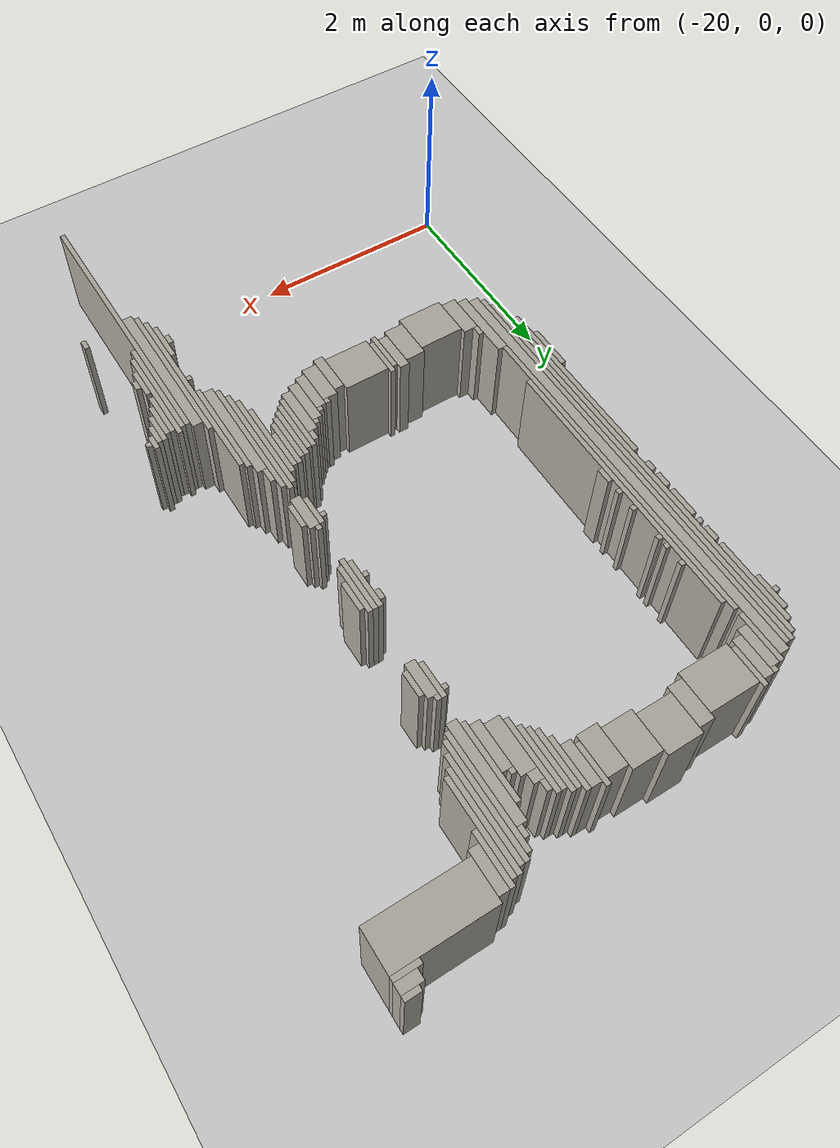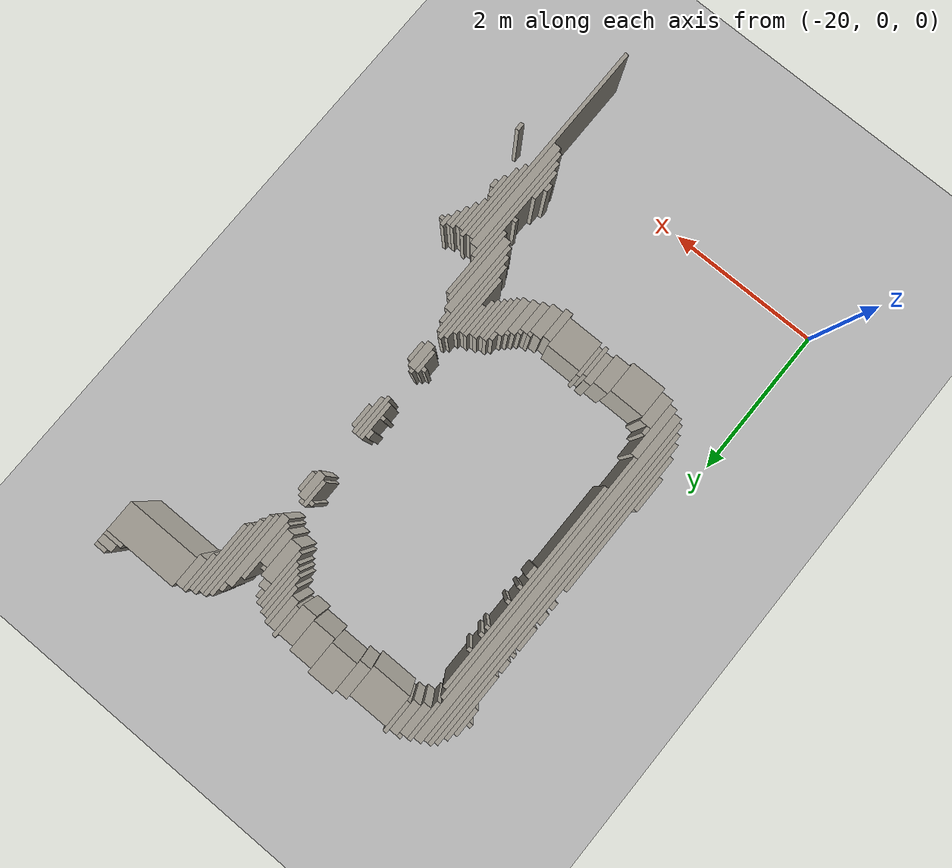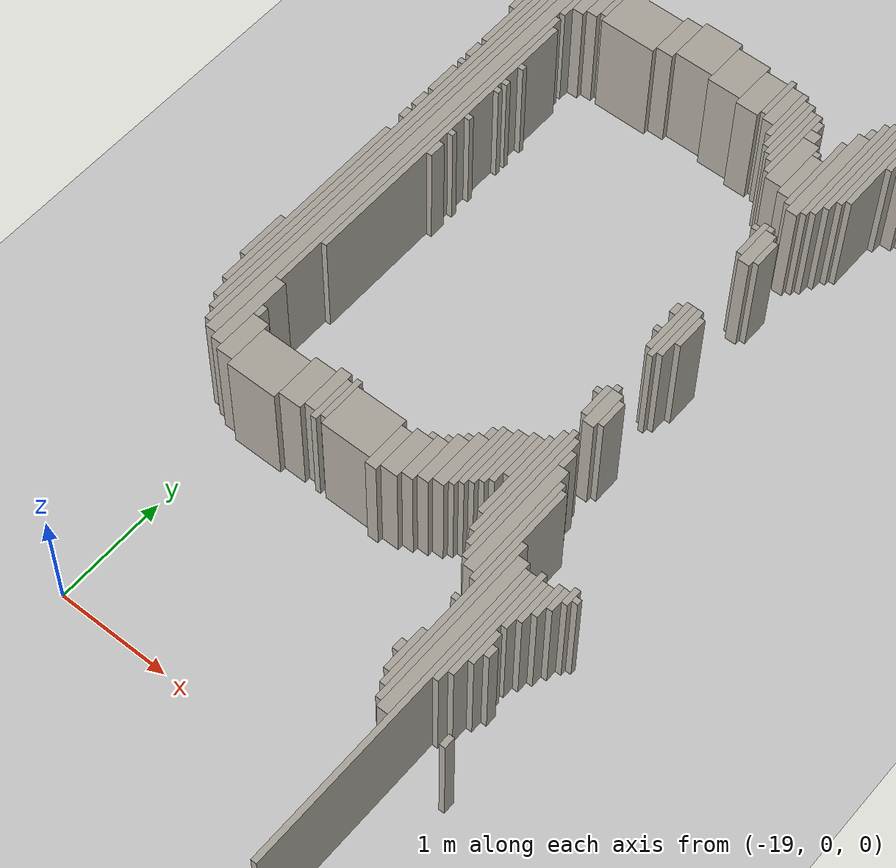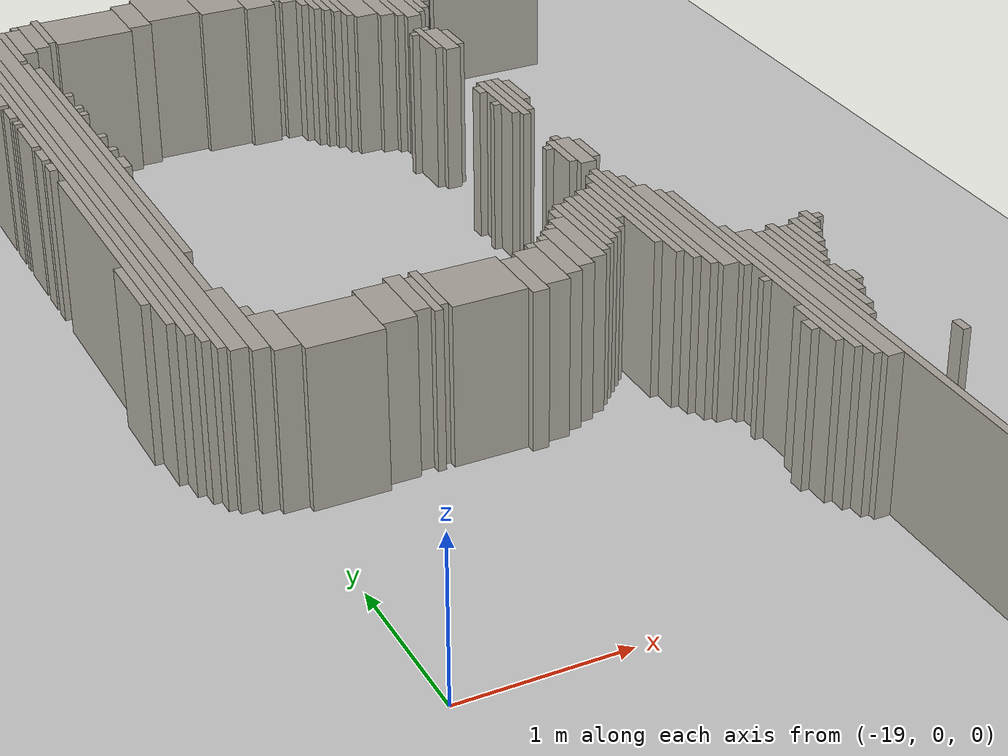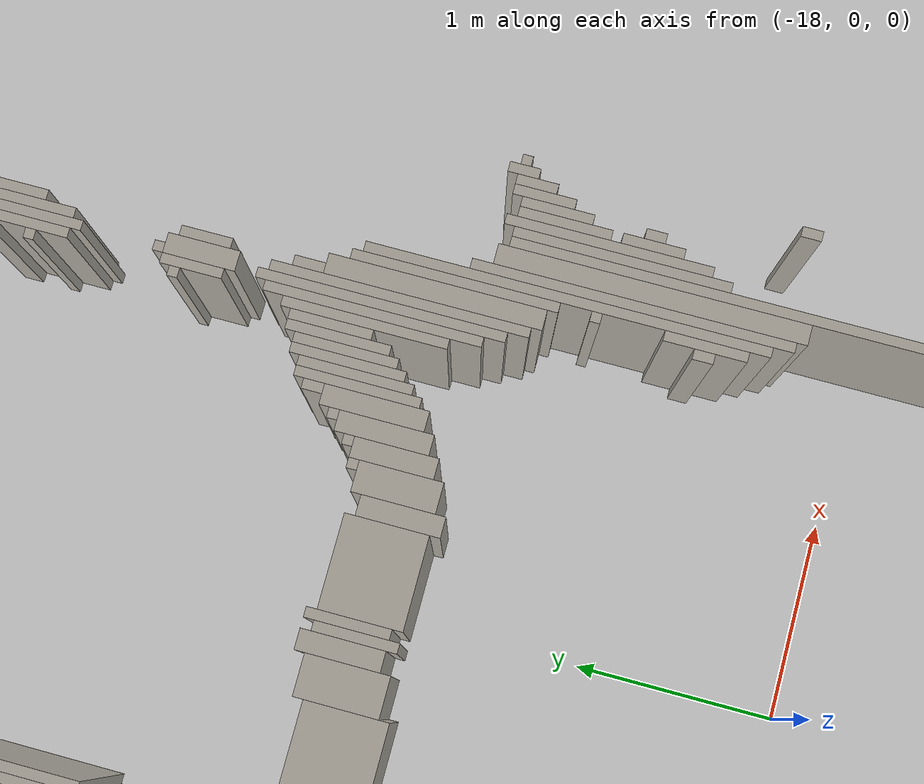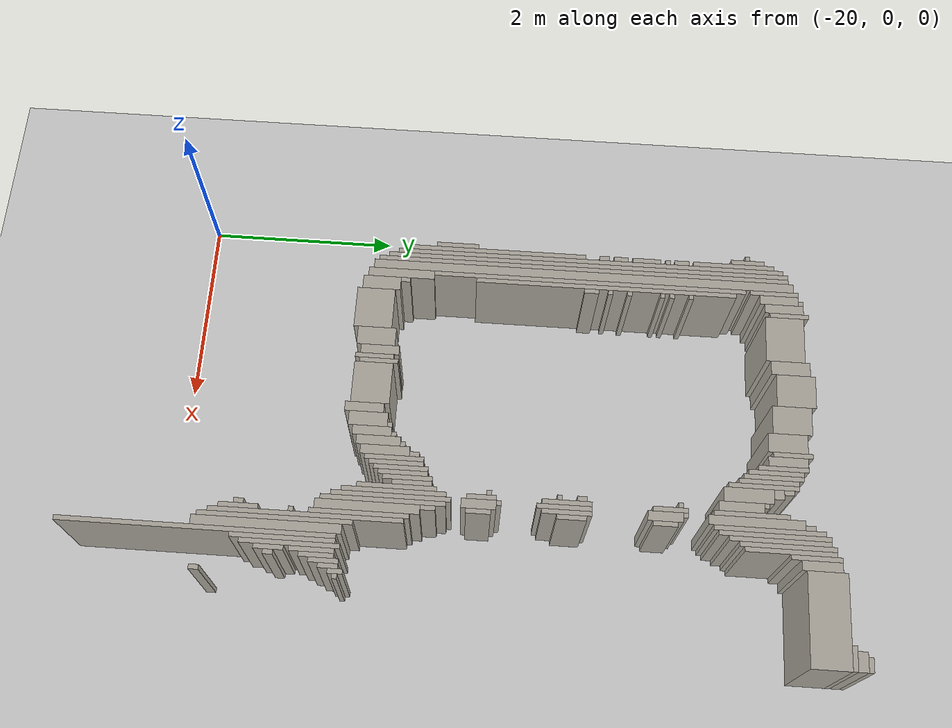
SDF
<sdf version="1.6">
 <world name="fr079_office">
  <include><uri>model://sun</uri></include>
  <include><uri>model://ground_plane</uri></include>
  <model name="fr079_office_walls">
   <static>true</static>
   <link name="w1769">
    <pose>-16.223 0.444 0.500 0 0 0</pose>
    <collision name="c"><geometry><box><size>0.050 2.800 1.000</size></box></geometry></collision>
    <visual name="v">
     <geometry><box><size>0.050 2.800 1.000</size></box></geometry>
     <material><ambient>0.68 0.66 0.62 1</ambient><diffuse>0.68 0.66 0.62 1</diffuse></material>
    </visual>
   </link>
   <link name="w1800">
    <pose>-16.298 1.144 0.500 0 0 0</pose>
    <collision name="c"><geometry><box><size>0.100 1.500 1.000</size></box></geometry></collision>
    <visual name="v">
     <geometry><box><size>0.100 1.500 1.000</size></box></geometry>
     <material><ambient>0.68 0.66 0.62 1</ambient><diffuse>0.68 0.66 0.62 1</diffuse></material>
    </visual>
   </link>
   <link name="w1803">
    <pose>-16.373 1.219 0.500 0 0 0</pose>
    <collision name="c"><geometry><box><size>0.050 1.550 1.000</size></box></geometry></collision>
    <visual name="v">
     <geometry><box><size>0.050 1.550 1.000</size></box></geometry>
     <material><ambient>0.68 0.66 0.62 1</ambient><diffuse>0.68 0.66 0.62 1</diffuse></material>
    </visual>
   </link>
   <link name="w1804">
    <pose>-15.823 0.494 0.500 0 0 0</pose>
    <collision name="c"><geometry><box><size>0.050 0.100 1.000</size></box></geometry></collision>
    <visual name="v">
     <geometry><box><size>0.050 0.100 1.000</size></box></geometry>
     <material><ambient>0.68 0.66 0.62 1</ambient><diffuse>0.68 0.66 0.62 1</diffuse></material>
    </visual>
   </link>
   <link name="w1809">
    <pose>-16.423 1.519 0.500 0 0 0</pose>
    <collision name="c"><geometry><box><size>0.050 1.950 1.000</size></box></geometry></collision>
    <visual name="v">
     <geometry><box><size>0.050 1.950 1.000</size></box></geometry>
     <material><ambient>0.68 0.66 0.62 1</ambient><diffuse>0.68 0.66 0.62 1</diffuse></material>
    </visual>
   </link>
   <link name="w1812">
    <pose>-16.473 0.844 0.500 0 0 0</pose>
    <collision name="c"><geometry><box><size>0.050 0.400 1.000</size></box></geometry></collision>
    <visual name="v">
     <geometry><box><size>0.050 0.400 1.000</size></box></geometry>
     <material><ambient>0.68 0.66 0.62 1</ambient><diffuse>0.68 0.66 0.62 1</diffuse></material>
    </visual>
   </link>
   <link name="w1815">
    <pose>-16.523 0.844 0.500 0 0 0</pose>
    <collision name="c"><geometry><box><size>0.050 0.100 1.000</size></box></geometry></collision>
    <visual name="v">
     <geometry><box><size>0.050 0.100 1.000</size></box></geometry>
     <material><ambient>0.68 0.66 0.62 1</ambient><diffuse>0.68 0.66 0.62 1</diffuse></material>
    </visual>
   </link>
   <link name="w1816">
    <pose>-16.173 1.319 0.500 0 0 0</pose>
    <collision name="c"><geometry><box><size>0.050 1.050 1.000</size></box></geometry></collision>
    <visual name="v">
     <geometry><box><size>0.050 1.050 1.000</size></box></geometry>
     <material><ambient>0.68 0.66 0.62 1</ambient><diffuse>0.68 0.66 0.62 1</diffuse></material>
    </visual>
   </link>
   <link name="w1819">
    <pose>-16.123 1.394 0.500 0 0 0</pose>
    <collision name="c"><geometry><box><size>0.050 1.000 1.000</size></box></geometry></collision>
    <visual name="v">
     <geometry><box><size>0.050 1.000 1.000</size></box></geometry>
     <material><ambient>0.68 0.66 0.62 1</ambient><diffuse>0.68 0.66 0.62 1</diffuse></material>
    </visual>
   </link>
   <link name="w1842">
    <pose>-16.073 1.194 0.500 0 0 0</pose>
    <collision name="c"><geometry><box><size>0.050 0.300 1.000</size></box></geometry></collision>
    <visual name="v">
     <geometry><box><size>0.050 0.300 1.000</size></box></geometry>
     <material><ambient>0.68 0.66 0.62 1</ambient><diffuse>0.68 0.66 0.62 1</diffuse></material>
    </visual>
   </link>
   <link name="w1882">
    <pose>-16.023 1.194 0.500 0 0 0</pose>
    <collision name="c"><geometry><box><size>0.050 0.100 1.000</size></box></geometry></collision>
    <visual name="v">
     <geometry><box><size>0.050 0.100 1.000</size></box></geometry>
     <material><ambient>0.68 0.66 0.62 1</ambient><diffuse>0.68 0.66 0.62 1</diffuse></material>
    </visual>
   </link>
   <link name="w1972">
    <pose>-16.473 1.369 0.500 0 0 0</pose>
    <collision name="c"><geometry><box><size>0.050 0.050 1.000</size></box></geometry></collision>
    <visual name="v">
     <geometry><box><size>0.050 0.050 1.000</size></box></geometry>
     <material><ambient>0.68 0.66 0.62 1</ambient><diffuse>0.68 0.66 0.62 1</diffuse></material>
    </visual>
   </link>
   <link name="w1987">
    <pose>-16.073 1.619 0.500 0 0 0</pose>
    <collision name="c"><geometry><box><size>0.050 0.450 1.000</size></box></geometry></collision>
    <visual name="v">
     <geometry><box><size>0.050 0.450 1.000</size></box></geometry>
     <material><ambient>0.68 0.66 0.62 1</ambient><diffuse>0.68 0.66 0.62 1</diffuse></material>
    </visual>
   </link>
   <link name="w2023">
    <pose>-16.023 1.669 0.500 0 0 0</pose>
    <collision name="c"><geometry><box><size>0.050 0.350 1.000</size></box></geometry></collision>
    <visual name="v">
     <geometry><box><size>0.050 0.350 1.000</size></box></geometry>
     <material><ambient>0.68 0.66 0.62 1</ambient><diffuse>0.68 0.66 0.62 1</diffuse></material>
    </visual>
   </link>
   <link name="w2036">
    <pose>-16.473 2.044 0.500 0 0 0</pose>
    <collision name="c"><geometry><box><size>0.050 1.000 1.000</size></box></geometry></collision>
    <visual name="v">
     <geometry><box><size>0.050 1.000 1.000</size></box></geometry>
     <material><ambient>0.68 0.66 0.62 1</ambient><diffuse>0.68 0.66 0.62 1</diffuse></material>
    </visual>
   </link>
   <link name="w2053">
    <pose>-16.548 2.119 0.500 0 0 0</pose>
    <collision name="c"><geometry><box><size>0.100 1.050 1.000</size></box></geometry></collision>
    <visual name="v">
     <geometry><box><size>0.100 1.050 1.000</size></box></geometry>
     <material><ambient>0.68 0.66 0.62 1</ambient><diffuse>0.68 0.66 0.62 1</diffuse></material>
    </visual>
   </link>
   <link name="w2054">
    <pose>-15.973 1.744 0.500 0 0 0</pose>
    <collision name="c"><geometry><box><size>0.050 0.300 1.000</size></box></geometry></collision>
    <visual name="v">
     <geometry><box><size>0.050 0.300 1.000</size></box></geometry>
     <material><ambient>0.68 0.66 0.62 1</ambient><diffuse>0.68 0.66 0.62 1</diffuse></material>
    </visual>
   </link>
   <link name="w2067">
    <pose>-16.623 2.269 0.500 0 0 0</pose>
    <collision name="c"><geometry><box><size>0.050 1.250 1.000</size></box></geometry></collision>
    <visual name="v">
     <geometry><box><size>0.050 1.250 1.000</size></box></geometry>
     <material><ambient>0.68 0.66 0.62 1</ambient><diffuse>0.68 0.66 0.62 1</diffuse></material>
    </visual>
   </link>
   <link name="w2079">
    <pose>-15.923 1.794 0.500 0 0 0</pose>
    <collision name="c"><geometry><box><size>0.050 0.200 1.000</size></box></geometry></collision>
    <visual name="v">
     <geometry><box><size>0.050 0.200 1.000</size></box></geometry>
     <material><ambient>0.68 0.66 0.62 1</ambient><diffuse>0.68 0.66 0.62 1</diffuse></material>
    </visual>
   </link>
   <link name="w2091">
    <pose>-16.673 2.344 0.500 0 0 0</pose>
    <collision name="c"><geometry><box><size>0.050 1.200 1.000</size></box></geometry></collision>
    <visual name="v">
     <geometry><box><size>0.050 1.200 1.000</size></box></geometry>
     <material><ambient>0.68 0.66 0.62 1</ambient><diffuse>0.68 0.66 0.62 1</diffuse></material>
    </visual>
   </link>
   <link name="w2103">
    <pose>-18.723 1.994 0.500 0 0 0</pose>
    <collision name="c"><geometry><box><size>0.450 0.400 1.000</size></box></geometry></collision>
    <visual name="v">
     <geometry><box><size>0.450 0.400 1.000</size></box></geometry>
     <material><ambient>0.68 0.66 0.62 1</ambient><diffuse>0.68 0.66 0.62 1</diffuse></material>
    </visual>
   </link>
   <link name="w2104">
    <pose>-17.598 1.994 0.500 0 0 0</pose>
    <collision name="c"><geometry><box><size>0.100 0.400 1.000</size></box></geometry></collision>
    <visual name="v">
     <geometry><box><size>0.100 0.400 1.000</size></box></geometry>
     <material><ambient>0.68 0.66 0.62 1</ambient><diffuse>0.68 0.66 0.62 1</diffuse></material>
    </visual>
   </link>
   <link name="w2105">
    <pose>-15.873 1.869 0.500 0 0 0</pose>
    <collision name="c"><geometry><box><size>0.050 0.150 1.000</size></box></geometry></collision>
    <visual name="v">
     <geometry><box><size>0.050 0.150 1.000</size></box></geometry>
     <material><ambient>0.68 0.66 0.62 1</ambient><diffuse>0.68 0.66 0.62 1</diffuse></material>
    </visual>
   </link>
   <link name="w2123">
    <pose>-19.023 2.044 0.500 0 0 0</pose>
    <collision name="c"><geometry><box><size>0.150 0.400 1.000</size></box></geometry></collision>
    <visual name="v">
     <geometry><box><size>0.150 0.400 1.000</size></box></geometry>
     <material><ambient>0.68 0.66 0.62 1</ambient><diffuse>0.68 0.66 0.62 1</diffuse></material>
    </visual>
   </link>
   <link name="w2124">
    <pose>-18.398 2.044 0.500 0 0 0</pose>
    <collision name="c"><geometry><box><size>0.200 0.400 1.000</size></box></geometry></collision>
    <visual name="v">
     <geometry><box><size>0.200 0.400 1.000</size></box></geometry>
     <material><ambient>0.68 0.66 0.62 1</ambient><diffuse>0.68 0.66 0.62 1</diffuse></material>
    </visual>
   </link>
   <link name="w2125">
    <pose>-18.173 2.044 0.500 0 0 0</pose>
    <collision name="c"><geometry><box><size>0.050 0.400 1.000</size></box></geometry></collision>
    <visual name="v">
     <geometry><box><size>0.050 0.400 1.000</size></box></geometry>
     <material><ambient>0.68 0.66 0.62 1</ambient><diffuse>0.68 0.66 0.62 1</diffuse></material>
    </visual>
   </link>
   <link name="w2126">
    <pose>-17.873 2.044 0.500 0 0 0</pose>
    <collision name="c"><geometry><box><size>0.450 0.400 1.000</size></box></geometry></collision>
    <visual name="v">
     <geometry><box><size>0.450 0.400 1.000</size></box></geometry>
     <material><ambient>0.68 0.66 0.62 1</ambient><diffuse>0.68 0.66 0.62 1</diffuse></material>
    </visual>
   </link>
   <link name="w2127">
    <pose>-17.473 2.044 0.500 0 0 0</pose>
    <collision name="c"><geometry><box><size>0.150 0.400 1.000</size></box></geometry></collision>
    <visual name="v">
     <geometry><box><size>0.150 0.400 1.000</size></box></geometry>
     <material><ambient>0.68 0.66 0.62 1</ambient><diffuse>0.68 0.66 0.62 1</diffuse></material>
    </visual>
   </link>
   <link name="w2128">
    <pose>-16.723 2.369 0.500 0 0 0</pose>
    <collision name="c"><geometry><box><size>0.050 1.050 1.000</size></box></geometry></collision>
    <visual name="v">
     <geometry><box><size>0.050 1.050 1.000</size></box></geometry>
     <material><ambient>0.68 0.66 0.62 1</ambient><diffuse>0.68 0.66 0.62 1</diffuse></material>
    </visual>
   </link>
   <link name="w2129">
    <pose>-15.823 1.869 0.500 0 0 0</pose>
    <collision name="c"><geometry><box><size>0.050 0.050 1.000</size></box></geometry></collision>
    <visual name="v">
     <geometry><box><size>0.050 0.050 1.000</size></box></geometry>
     <material><ambient>0.68 0.66 0.62 1</ambient><diffuse>0.68 0.66 0.62 1</diffuse></material>
    </visual>
   </link>
   <link name="w2144">
    <pose>-19.148 2.244 0.500 0 0 0</pose>
    <collision name="c"><geometry><box><size>0.100 0.700 1.000</size></box></geometry></collision>
    <visual name="v">
     <geometry><box><size>0.100 0.700 1.000</size></box></geometry>
     <material><ambient>0.68 0.66 0.62 1</ambient><diffuse>0.68 0.66 0.62 1</diffuse></material>
    </visual>
   </link>
   <link name="w2145">
    <pose>-18.248 2.094 0.500 0 0 0</pose>
    <collision name="c"><geometry><box><size>0.100 0.400 1.000</size></box></geometry></collision>
    <visual name="v">
     <geometry><box><size>0.100 0.400 1.000</size></box></geometry>
     <material><ambient>0.68 0.66 0.62 1</ambient><diffuse>0.68 0.66 0.62 1</diffuse></material>
    </visual>
   </link>
   <link name="w2146">
    <pose>-18.123 2.094 0.500 0 0 0</pose>
    <collision name="c"><geometry><box><size>0.050 0.400 1.000</size></box></geometry></collision>
    <visual name="v">
     <geometry><box><size>0.050 0.400 1.000</size></box></geometry>
     <material><ambient>0.68 0.66 0.62 1</ambient><diffuse>0.68 0.66 0.62 1</diffuse></material>
    </visual>
   </link>
   <link name="w2147">
    <pose>-17.348 2.094 0.500 0 0 0</pose>
    <collision name="c"><geometry><box><size>0.100 0.400 1.000</size></box></geometry></collision>
    <visual name="v">
     <geometry><box><size>0.100 0.400 1.000</size></box></geometry>
     <material><ambient>0.68 0.66 0.62 1</ambient><diffuse>0.68 0.66 0.62 1</diffuse></material>
    </visual>
   </link>
   <link name="w2154">
    <pose>-19.248 4.169 0.500 0 0 0</pose>
    <collision name="c"><geometry><box><size>0.100 4.450 1.000</size></box></geometry></collision>
    <visual name="v">
     <geometry><box><size>0.100 4.450 1.000</size></box></geometry>
     <material><ambient>0.68 0.66 0.62 1</ambient><diffuse>0.68 0.66 0.62 1</diffuse></material>
    </visual>
   </link>
   <link name="w2155">
    <pose>-17.248 2.169 0.500 0 0 0</pose>
    <collision name="c"><geometry><box><size>0.100 0.450 1.000</size></box></geometry></collision>
    <visual name="v">
     <geometry><box><size>0.100 0.450 1.000</size></box></geometry>
     <material><ambient>0.68 0.66 0.62 1</ambient><diffuse>0.68 0.66 0.62 1</diffuse></material>
    </visual>
   </link>
   <link name="w2168">
    <pose>-19.323 4.169 0.500 0 0 0</pose>
    <collision name="c"><geometry><box><size>0.050 4.350 1.000</size></box></geometry></collision>
    <visual name="v">
     <geometry><box><size>0.050 4.350 1.000</size></box></geometry>
     <material><ambient>0.68 0.66 0.62 1</ambient><diffuse>0.68 0.66 0.62 1</diffuse></material>
    </visual>
   </link>
   <link name="w2169">
    <pose>-17.148 2.244 0.500 0 0 0</pose>
    <collision name="c"><geometry><box><size>0.100 0.500 1.000</size></box></geometry></collision>
    <visual name="v">
     <geometry><box><size>0.100 0.500 1.000</size></box></geometry>
     <material><ambient>0.68 0.66 0.62 1</ambient><diffuse>0.68 0.66 0.62 1</diffuse></material>
    </visual>
   </link>
   <link name="w2170">
    <pose>-16.773 2.394 0.500 0 0 0</pose>
    <collision name="c"><geometry><box><size>0.050 0.800 1.000</size></box></geometry></collision>
    <visual name="v">
     <geometry><box><size>0.050 0.800 1.000</size></box></geometry>
     <material><ambient>0.68 0.66 0.62 1</ambient><diffuse>0.68 0.66 0.62 1</diffuse></material>
    </visual>
   </link>
   <link name="w2180">
    <pose>-17.073 2.344 0.500 0 0 0</pose>
    <collision name="c"><geometry><box><size>0.050 0.600 1.000</size></box></geometry></collision>
    <visual name="v">
     <geometry><box><size>0.050 0.600 1.000</size></box></geometry>
     <material><ambient>0.68 0.66 0.62 1</ambient><diffuse>0.68 0.66 0.62 1</diffuse></material>
    </visual>
   </link>
   <link name="w2190">
    <pose>-19.373 4.219 0.500 0 0 0</pose>
    <collision name="c"><geometry><box><size>0.050 4.250 1.000</size></box></geometry></collision>
    <visual name="v">
     <geometry><box><size>0.050 4.250 1.000</size></box></geometry>
     <material><ambient>0.68 0.66 0.62 1</ambient><diffuse>0.68 0.66 0.62 1</diffuse></material>
    </visual>
   </link>
   <link name="w2191">
    <pose>-17.023 2.369 0.500 0 0 0</pose>
    <collision name="c"><geometry><box><size>0.050 0.550 1.000</size></box></geometry></collision>
    <visual name="v">
     <geometry><box><size>0.050 0.550 1.000</size></box></geometry>
     <material><ambient>0.68 0.66 0.62 1</ambient><diffuse>0.68 0.66 0.62 1</diffuse></material>
    </visual>
   </link>
   <link name="w2201">
    <pose>-16.973 2.419 0.500 0 0 0</pose>
    <collision name="c"><geometry><box><size>0.050 0.550 1.000</size></box></geometry></collision>
    <visual name="v">
     <geometry><box><size>0.050 0.550 1.000</size></box></geometry>
     <material><ambient>0.68 0.66 0.62 1</ambient><diffuse>0.68 0.66 0.62 1</diffuse></material>
    </visual>
   </link>
   <link name="w2207">
    <pose>-19.423 4.244 0.500 0 0 0</pose>
    <collision name="c"><geometry><box><size>0.050 4.100 1.000</size></box></geometry></collision>
    <visual name="v">
     <geometry><box><size>0.050 4.100 1.000</size></box></geometry>
     <material><ambient>0.68 0.66 0.62 1</ambient><diffuse>0.68 0.66 0.62 1</diffuse></material>
    </visual>
   </link>
   <link name="w2208">
    <pose>-16.923 2.444 0.500 0 0 0</pose>
    <collision name="c"><geometry><box><size>0.050 0.500 1.000</size></box></geometry></collision>
    <visual name="v">
     <geometry><box><size>0.050 0.500 1.000</size></box></geometry>
     <material><ambient>0.68 0.66 0.62 1</ambient><diffuse>0.68 0.66 0.62 1</diffuse></material>
    </visual>
   </link>
   <link name="w2219">
    <pose>-19.073 2.294 0.500 0 0 0</pose>
    <collision name="c"><geometry><box><size>0.050 0.100 1.000</size></box></geometry></collision>
    <visual name="v">
     <geometry><box><size>0.050 0.100 1.000</size></box></geometry>
     <material><ambient>0.68 0.66 0.62 1</ambient><diffuse>0.68 0.66 0.62 1</diffuse></material>
    </visual>
   </link>
   <link name="w2220">
    <pose>-17.423 2.269 0.500 0 0 0</pose>
    <collision name="c"><geometry><box><size>0.050 0.050 1.000</size></box></geometry></collision>
    <visual name="v">
     <geometry><box><size>0.050 0.050 1.000</size></box></geometry>
     <material><ambient>0.68 0.66 0.62 1</ambient><diffuse>0.68 0.66 0.62 1</diffuse></material>
    </visual>
   </link>
   <link name="w2221">
    <pose>-16.873 2.494 0.500 0 0 0</pose>
    <collision name="c"><geometry><box><size>0.050 0.500 1.000</size></box></geometry></collision>
    <visual name="v">
     <geometry><box><size>0.050 0.500 1.000</size></box></geometry>
     <material><ambient>0.68 0.66 0.62 1</ambient><diffuse>0.68 0.66 0.62 1</diffuse></material>
    </visual>
   </link>
   <link name="w2230">
    <pose>-17.323 2.319 0.500 0 0 0</pose>
    <collision name="c"><geometry><box><size>0.050 0.050 1.000</size></box></geometry></collision>
    <visual name="v">
     <geometry><box><size>0.050 0.050 1.000</size></box></geometry>
     <material><ambient>0.68 0.66 0.62 1</ambient><diffuse>0.68 0.66 0.62 1</diffuse></material>
    </visual>
   </link>
   <link name="w2240">
    <pose>-19.473 3.269 0.500 0 0 0</pose>
    <collision name="c"><geometry><box><size>0.050 1.850 1.000</size></box></geometry></collision>
    <visual name="v">
     <geometry><box><size>0.050 1.850 1.000</size></box></geometry>
     <material><ambient>0.68 0.66 0.62 1</ambient><diffuse>0.68 0.66 0.62 1</diffuse></material>
    </visual>
   </link>
   <link name="w2241">
    <pose>-16.823 2.544 0.500 0 0 0</pose>
    <collision name="c"><geometry><box><size>0.050 0.400 1.000</size></box></geometry></collision>
    <visual name="v">
     <geometry><box><size>0.050 0.400 1.000</size></box></geometry>
     <material><ambient>0.68 0.66 0.62 1</ambient><diffuse>0.68 0.66 0.62 1</diffuse></material>
    </visual>
   </link>
   <link name="w2252">
    <pose>-17.223 2.419 0.500 0 0 0</pose>
    <collision name="c"><geometry><box><size>0.050 0.050 1.000</size></box></geometry></collision>
    <visual name="v">
     <geometry><box><size>0.050 0.050 1.000</size></box></geometry>
     <material><ambient>0.68 0.66 0.62 1</ambient><diffuse>0.68 0.66 0.62 1</diffuse></material>
    </visual>
   </link>
   <link name="w2267">
    <pose>-17.123 2.544 0.500 0 0 0</pose>
    <collision name="c"><geometry><box><size>0.050 0.100 1.000</size></box></geometry></collision>
    <visual name="v">
     <geometry><box><size>0.050 0.100 1.000</size></box></geometry>
     <material><ambient>0.68 0.66 0.62 1</ambient><diffuse>0.68 0.66 0.62 1</diffuse></material>
    </visual>
   </link>
   <link name="w2306">
    <pose>-19.523 2.819 0.500 0 0 0</pose>
    <collision name="c"><geometry><box><size>0.050 0.450 1.000</size></box></geometry></collision>
    <visual name="v">
     <geometry><box><size>0.050 0.450 1.000</size></box></geometry>
     <material><ambient>0.68 0.66 0.62 1</ambient><diffuse>0.68 0.66 0.62 1</diffuse></material>
    </visual>
   </link>
   <link name="w2307">
    <pose>-19.173 4.244 0.500 0 0 0</pose>
    <collision name="c"><geometry><box><size>0.050 3.300 1.000</size></box></geometry></collision>
    <visual name="v">
     <geometry><box><size>0.050 3.300 1.000</size></box></geometry>
     <material><ambient>0.68 0.66 0.62 1</ambient><diffuse>0.68 0.66 0.62 1</diffuse></material>
    </visual>
   </link>
   <link name="w2322">
    <pose>-16.573 2.719 0.500 0 0 0</pose>
    <collision name="c"><geometry><box><size>0.050 0.150 1.000</size></box></geometry></collision>
    <visual name="v">
     <geometry><box><size>0.050 0.150 1.000</size></box></geometry>
     <material><ambient>0.68 0.66 0.62 1</ambient><diffuse>0.68 0.66 0.62 1</diffuse></material>
    </visual>
   </link>
   <link name="w2406">
    <pose>-19.123 4.419 0.500 0 0 0</pose>
    <collision name="c"><geometry><box><size>0.050 2.750 1.000</size></box></geometry></collision>
    <visual name="v">
     <geometry><box><size>0.050 2.750 1.000</size></box></geometry>
     <material><ambient>0.68 0.66 0.62 1</ambient><diffuse>0.68 0.66 0.62 1</diffuse></material>
    </visual>
   </link>
   <link name="w2407">
    <pose>-16.648 3.219 0.500 0 0 0</pose>
    <collision name="c"><geometry><box><size>0.100 0.350 1.000</size></box></geometry></collision>
    <visual name="v">
     <geometry><box><size>0.100 0.350 1.000</size></box></geometry>
     <material><ambient>0.68 0.66 0.62 1</ambient><diffuse>0.68 0.66 0.62 1</diffuse></material>
    </visual>
   </link>
   <link name="w2419">
    <pose>-16.723 3.244 0.500 0 0 0</pose>
    <collision name="c"><geometry><box><size>0.050 0.300 1.000</size></box></geometry></collision>
    <visual name="v">
     <geometry><box><size>0.050 0.300 1.000</size></box></geometry>
     <material><ambient>0.68 0.66 0.62 1</ambient><diffuse>0.68 0.66 0.62 1</diffuse></material>
    </visual>
   </link>
   <link name="w2420">
    <pose>-16.573 3.219 0.500 0 0 0</pose>
    <collision name="c"><geometry><box><size>0.050 0.250 1.000</size></box></geometry></collision>
    <visual name="v">
     <geometry><box><size>0.050 0.250 1.000</size></box></geometry>
     <material><ambient>0.68 0.66 0.62 1</ambient><diffuse>0.68 0.66 0.62 1</diffuse></material>
    </visual>
   </link>
   <link name="w2479">
    <pose>-16.773 3.319 0.500 0 0 0</pose>
    <collision name="c"><geometry><box><size>0.050 0.050 1.000</size></box></geometry></collision>
    <visual name="v">
     <geometry><box><size>0.050 0.050 1.000</size></box></geometry>
     <material><ambient>0.68 0.66 0.62 1</ambient><diffuse>0.68 0.66 0.62 1</diffuse></material>
    </visual>
   </link>
   <link name="w2505">
    <pose>-16.673 3.419 0.500 0 0 0</pose>
    <collision name="c"><geometry><box><size>0.050 0.050 1.000</size></box></geometry></collision>
    <visual name="v">
     <geometry><box><size>0.050 0.050 1.000</size></box></geometry>
     <material><ambient>0.68 0.66 0.62 1</ambient><diffuse>0.68 0.66 0.62 1</diffuse></material>
    </visual>
   </link>
   <link name="w2573">
    <pose>-16.673 4.069 0.500 0 0 0</pose>
    <collision name="c"><geometry><box><size>0.050 0.550 1.000</size></box></geometry></collision>
    <visual name="v">
     <geometry><box><size>0.050 0.550 1.000</size></box></geometry>
     <material><ambient>0.68 0.66 0.62 1</ambient><diffuse>0.68 0.66 0.62 1</diffuse></material>
    </visual>
   </link>
   <link name="w2583">
    <pose>-16.723 4.094 0.500 0 0 0</pose>
    <collision name="c"><geometry><box><size>0.050 0.500 1.000</size></box></geometry></collision>
    <visual name="v">
     <geometry><box><size>0.050 0.500 1.000</size></box></geometry>
     <material><ambient>0.68 0.66 0.62 1</ambient><diffuse>0.68 0.66 0.62 1</diffuse></material>
    </visual>
   </link>
   <link name="w2584">
    <pose>-16.623 4.094 0.500 0 0 0</pose>
    <collision name="c"><geometry><box><size>0.050 0.500 1.000</size></box></geometry></collision>
    <visual name="v">
     <geometry><box><size>0.050 0.500 1.000</size></box></geometry>
     <material><ambient>0.68 0.66 0.62 1</ambient><diffuse>0.68 0.66 0.62 1</diffuse></material>
    </visual>
   </link>
   <link name="w2607">
    <pose>-16.773 4.019 0.500 0 0 0</pose>
    <collision name="c"><geometry><box><size>0.050 0.050 1.000</size></box></geometry></collision>
    <visual name="v">
     <geometry><box><size>0.050 0.050 1.000</size></box></geometry>
     <material><ambient>0.68 0.66 0.62 1</ambient><diffuse>0.68 0.66 0.62 1</diffuse></material>
    </visual>
   </link>
   <link name="w2608">
    <pose>-16.573 4.144 0.500 0 0 0</pose>
    <collision name="c"><geometry><box><size>0.050 0.300 1.000</size></box></geometry></collision>
    <visual name="v">
     <geometry><box><size>0.050 0.300 1.000</size></box></geometry>
     <material><ambient>0.68 0.66 0.62 1</ambient><diffuse>0.68 0.66 0.62 1</diffuse></material>
    </visual>
   </link>
   <link name="w2657">
    <pose>-19.073 4.269 0.500 0 0 0</pose>
    <collision name="c"><geometry><box><size>0.050 0.150 1.000</size></box></geometry></collision>
    <visual name="v">
     <geometry><box><size>0.050 0.150 1.000</size></box></geometry>
     <material><ambient>0.68 0.66 0.62 1</ambient><diffuse>0.68 0.66 0.62 1</diffuse></material>
    </visual>
   </link>
   <link name="w2658">
    <pose>-16.773 4.244 0.500 0 0 0</pose>
    <collision name="c"><geometry><box><size>0.050 0.100 1.000</size></box></geometry></collision>
    <visual name="v">
     <geometry><box><size>0.050 0.100 1.000</size></box></geometry>
     <material><ambient>0.68 0.66 0.62 1</ambient><diffuse>0.68 0.66 0.62 1</diffuse></material>
    </visual>
   </link>
   <link name="w2689">
    <pose>-19.473 4.394 0.500 0 0 0</pose>
    <collision name="c"><geometry><box><size>0.050 0.100 1.000</size></box></geometry></collision>
    <visual name="v">
     <geometry><box><size>0.050 0.100 1.000</size></box></geometry>
     <material><ambient>0.68 0.66 0.62 1</ambient><diffuse>0.68 0.66 0.62 1</diffuse></material>
    </visual>
   </link>
   <link name="w2703">
    <pose>-19.073 4.469 0.500 0 0 0</pose>
    <collision name="c"><geometry><box><size>0.050 0.050 1.000</size></box></geometry></collision>
    <visual name="v">
     <geometry><box><size>0.050 0.050 1.000</size></box></geometry>
     <material><ambient>0.68 0.66 0.62 1</ambient><diffuse>0.68 0.66 0.62 1</diffuse></material>
    </visual>
   </link>
   <link name="w2709">
    <pose>-19.473 4.569 0.500 0 0 0</pose>
    <collision name="c"><geometry><box><size>0.050 0.150 1.000</size></box></geometry></collision>
    <visual name="v">
     <geometry><box><size>0.050 0.150 1.000</size></box></geometry>
     <material><ambient>0.68 0.66 0.62 1</ambient><diffuse>0.68 0.66 0.62 1</diffuse></material>
    </visual>
   </link>
   <link name="w2736">
    <pose>-19.073 4.669 0.500 0 0 0</pose>
    <collision name="c"><geometry><box><size>0.050 0.050 1.000</size></box></geometry></collision>
    <visual name="v">
     <geometry><box><size>0.050 0.050 1.000</size></box></geometry>
     <material><ambient>0.68 0.66 0.62 1</ambient><diffuse>0.68 0.66 0.62 1</diffuse></material>
    </visual>
   </link>
   <link name="w2745">
    <pose>-19.473 4.844 0.500 0 0 0</pose>
    <collision name="c"><geometry><box><size>0.050 0.300 1.000</size></box></geometry></collision>
    <visual name="v">
     <geometry><box><size>0.050 0.300 1.000</size></box></geometry>
     <material><ambient>0.68 0.66 0.62 1</ambient><diffuse>0.68 0.66 0.62 1</diffuse></material>
    </visual>
   </link>
   <link name="w2774">
    <pose>-16.648 5.069 0.500 0 0 0</pose>
    <collision name="c"><geometry><box><size>0.100 0.350 1.000</size></box></geometry></collision>
    <visual name="v">
     <geometry><box><size>0.100 0.350 1.000</size></box></geometry>
     <material><ambient>0.68 0.66 0.62 1</ambient><diffuse>0.68 0.66 0.62 1</diffuse></material>
    </visual>
   </link>
   <link name="w2786">
    <pose>-16.723 5.119 0.500 0 0 0</pose>
    <collision name="c"><geometry><box><size>0.050 0.350 1.000</size></box></geometry></collision>
    <visual name="v">
     <geometry><box><size>0.050 0.350 1.000</size></box></geometry>
     <material><ambient>0.68 0.66 0.62 1</ambient><diffuse>0.68 0.66 0.62 1</diffuse></material>
    </visual>
   </link>
   <link name="w2787">
    <pose>-16.573 5.069 0.500 0 0 0</pose>
    <collision name="c"><geometry><box><size>0.050 0.250 1.000</size></box></geometry></collision>
    <visual name="v">
     <geometry><box><size>0.050 0.250 1.000</size></box></geometry>
     <material><ambient>0.68 0.66 0.62 1</ambient><diffuse>0.68 0.66 0.62 1</diffuse></material>
    </visual>
   </link>
   <link name="w2800">
    <pose>-19.073 5.019 0.500 0 0 0</pose>
    <collision name="c"><geometry><box><size>0.050 0.050 1.000</size></box></geometry></collision>
    <visual name="v">
     <geometry><box><size>0.050 0.050 1.000</size></box></geometry>
     <material><ambient>0.68 0.66 0.62 1</ambient><diffuse>0.68 0.66 0.62 1</diffuse></material>
    </visual>
   </link>
   <link name="w2816">
    <pose>-19.473 5.069 0.500 0 0 0</pose>
    <collision name="c"><geometry><box><size>0.050 0.050 1.000</size></box></geometry></collision>
    <visual name="v">
     <geometry><box><size>0.050 0.050 1.000</size></box></geometry>
     <material><ambient>0.68 0.66 0.62 1</ambient><diffuse>0.68 0.66 0.62 1</diffuse></material>
    </visual>
   </link>
   <link name="w2821">
    <pose>-19.073 5.119 0.500 0 0 0</pose>
    <collision name="c"><geometry><box><size>0.050 0.050 1.000</size></box></geometry></collision>
    <visual name="v">
     <geometry><box><size>0.050 0.050 1.000</size></box></geometry>
     <material><ambient>0.68 0.66 0.62 1</ambient><diffuse>0.68 0.66 0.62 1</diffuse></material>
    </visual>
   </link>
   <link name="w2832">
    <pose>-19.473 5.219 0.500 0 0 0</pose>
    <collision name="c"><geometry><box><size>0.050 0.150 1.000</size></box></geometry></collision>
    <visual name="v">
     <geometry><box><size>0.050 0.150 1.000</size></box></geometry>
     <material><ambient>0.68 0.66 0.62 1</ambient><diffuse>0.68 0.66 0.62 1</diffuse></material>
    </visual>
   </link>
   <link name="w2841">
    <pose>-16.773 5.219 0.500 0 0 0</pose>
    <collision name="c"><geometry><box><size>0.050 0.050 1.000</size></box></geometry></collision>
    <visual name="v">
     <geometry><box><size>0.050 0.050 1.000</size></box></geometry>
     <material><ambient>0.68 0.66 0.62 1</ambient><diffuse>0.68 0.66 0.62 1</diffuse></material>
    </visual>
   </link>
   <link name="w2851">
    <pose>-16.673 5.269 0.500 0 0 0</pose>
    <collision name="c"><geometry><box><size>0.050 0.050 1.000</size></box></geometry></collision>
    <visual name="v">
     <geometry><box><size>0.050 0.050 1.000</size></box></geometry>
     <material><ambient>0.68 0.66 0.62 1</ambient><diffuse>0.68 0.66 0.62 1</diffuse></material>
    </visual>
   </link>
   <link name="w2864">
    <pose>-19.073 5.319 0.500 0 0 0</pose>
    <collision name="c"><geometry><box><size>0.050 0.050 1.000</size></box></geometry></collision>
    <visual name="v">
     <geometry><box><size>0.050 0.050 1.000</size></box></geometry>
     <material><ambient>0.68 0.66 0.62 1</ambient><diffuse>0.68 0.66 0.62 1</diffuse></material>
    </visual>
   </link>
   <link name="w2877">
    <pose>-19.473 5.769 0.500 0 0 0</pose>
    <collision name="c"><geometry><box><size>0.050 0.850 1.000</size></box></geometry></collision>
    <visual name="v">
     <geometry><box><size>0.050 0.850 1.000</size></box></geometry>
     <material><ambient>0.68 0.66 0.62 1</ambient><diffuse>0.68 0.66 0.62 1</diffuse></material>
    </visual>
   </link>
   <link name="w2913">
    <pose>-16.648 5.969 0.500 0 0 0</pose>
    <collision name="c"><geometry><box><size>0.100 0.950 1.000</size></box></geometry></collision>
    <visual name="v">
     <geometry><box><size>0.100 0.950 1.000</size></box></geometry>
     <material><ambient>0.68 0.66 0.62 1</ambient><diffuse>0.68 0.66 0.62 1</diffuse></material>
    </visual>
   </link>
   <link name="w2926">
    <pose>-16.723 5.919 0.500 0 0 0</pose>
    <collision name="c"><geometry><box><size>0.050 0.750 1.000</size></box></geometry></collision>
    <visual name="v">
     <geometry><box><size>0.050 0.750 1.000</size></box></geometry>
     <material><ambient>0.68 0.66 0.62 1</ambient><diffuse>0.68 0.66 0.62 1</diffuse></material>
    </visual>
   </link>
   <link name="w2927">
    <pose>-16.573 6.094 0.500 0 0 0</pose>
    <collision name="c"><geometry><box><size>0.050 1.100 1.000</size></box></geometry></collision>
    <visual name="v">
     <geometry><box><size>0.050 1.100 1.000</size></box></geometry>
     <material><ambient>0.68 0.66 0.62 1</ambient><diffuse>0.68 0.66 0.62 1</diffuse></material>
    </visual>
   </link>
   <link name="w2936">
    <pose>-16.798 5.819 0.500 0 0 0</pose>
    <collision name="c"><geometry><box><size>0.100 0.450 1.000</size></box></geometry></collision>
    <visual name="v">
     <geometry><box><size>0.100 0.450 1.000</size></box></geometry>
     <material><ambient>0.68 0.66 0.62 1</ambient><diffuse>0.68 0.66 0.62 1</diffuse></material>
    </visual>
   </link>
   <link name="w2937">
    <pose>-16.523 6.144 0.500 0 0 0</pose>
    <collision name="c"><geometry><box><size>0.050 1.100 1.000</size></box></geometry></collision>
    <visual name="v">
     <geometry><box><size>0.050 1.100 1.000</size></box></geometry>
     <material><ambient>0.68 0.66 0.62 1</ambient><diffuse>0.68 0.66 0.62 1</diffuse></material>
    </visual>
   </link>
   <link name="w2952">
    <pose>-16.923 5.894 0.500 0 0 0</pose>
    <collision name="c"><geometry><box><size>0.150 0.500 1.000</size></box></geometry></collision>
    <visual name="v">
     <geometry><box><size>0.150 0.500 1.000</size></box></geometry>
     <material><ambient>0.68 0.66 0.62 1</ambient><diffuse>0.68 0.66 0.62 1</diffuse></material>
    </visual>
   </link>
   <link name="w2965">
    <pose>-17.023 6.044 0.500 0 0 0</pose>
    <collision name="c"><geometry><box><size>0.050 0.700 1.000</size></box></geometry></collision>
    <visual name="v">
     <geometry><box><size>0.050 0.700 1.000</size></box></geometry>
     <material><ambient>0.68 0.66 0.62 1</ambient><diffuse>0.68 0.66 0.62 1</diffuse></material>
    </visual>
   </link>
   <link name="w2966">
    <pose>-16.473 6.194 0.500 0 0 0</pose>
    <collision name="c"><geometry><box><size>0.050 1.000 1.000</size></box></geometry></collision>
    <visual name="v">
     <geometry><box><size>0.050 1.000 1.000</size></box></geometry>
     <material><ambient>0.68 0.66 0.62 1</ambient><diffuse>0.68 0.66 0.62 1</diffuse></material>
    </visual>
   </link>
   <link name="w2974">
    <pose>-19.523 5.919 0.500 0 0 0</pose>
    <collision name="c"><geometry><box><size>0.050 0.350 1.000</size></box></geometry></collision>
    <visual name="v">
     <geometry><box><size>0.050 0.350 1.000</size></box></geometry>
     <material><ambient>0.68 0.66 0.62 1</ambient><diffuse>0.68 0.66 0.62 1</diffuse></material>
    </visual>
   </link>
   <link name="w2984">
    <pose>-17.073 6.094 0.500 0 0 0</pose>
    <collision name="c"><geometry><box><size>0.050 0.600 1.000</size></box></geometry></collision>
    <visual name="v">
     <geometry><box><size>0.050 0.600 1.000</size></box></geometry>
     <material><ambient>0.68 0.66 0.62 1</ambient><diffuse>0.68 0.66 0.62 1</diffuse></material>
    </visual>
   </link>
   <link name="w2985">
    <pose>-16.423 6.269 0.500 0 0 0</pose>
    <collision name="c"><geometry><box><size>0.050 0.950 1.000</size></box></geometry></collision>
    <visual name="v">
     <geometry><box><size>0.050 0.950 1.000</size></box></geometry>
     <material><ambient>0.68 0.66 0.62 1</ambient><diffuse>0.68 0.66 0.62 1</diffuse></material>
    </visual>
   </link>
   <link name="w2993">
    <pose>-17.123 6.144 0.500 0 0 0</pose>
    <collision name="c"><geometry><box><size>0.050 0.600 1.000</size></box></geometry></collision>
    <visual name="v">
     <geometry><box><size>0.050 0.600 1.000</size></box></geometry>
     <material><ambient>0.68 0.66 0.62 1</ambient><diffuse>0.68 0.66 0.62 1</diffuse></material>
    </visual>
   </link>
   <link name="w2994">
    <pose>-16.373 6.294 0.500 0 0 0</pose>
    <collision name="c"><geometry><box><size>0.050 0.900 1.000</size></box></geometry></collision>
    <visual name="v">
     <geometry><box><size>0.050 0.900 1.000</size></box></geometry>
     <material><ambient>0.68 0.66 0.62 1</ambient><diffuse>0.68 0.66 0.62 1</diffuse></material>
    </visual>
   </link>
   <link name="w3002">
    <pose>-19.573 5.919 0.500 0 0 0</pose>
    <collision name="c"><geometry><box><size>0.050 0.050 1.000</size></box></geometry></collision>
    <visual name="v">
     <geometry><box><size>0.050 0.050 1.000</size></box></geometry>
     <material><ambient>0.68 0.66 0.62 1</ambient><diffuse>0.68 0.66 0.62 1</diffuse></material>
    </visual>
   </link>
   <link name="w3003">
    <pose>-17.173 6.169 0.500 0 0 0</pose>
    <collision name="c"><geometry><box><size>0.050 0.550 1.000</size></box></geometry></collision>
    <visual name="v">
     <geometry><box><size>0.050 0.550 1.000</size></box></geometry>
     <material><ambient>0.68 0.66 0.62 1</ambient><diffuse>0.68 0.66 0.62 1</diffuse></material>
    </visual>
   </link>
   <link name="w3010">
    <pose>-19.173 6.194 0.500 0 0 0</pose>
    <collision name="c"><geometry><box><size>0.050 0.500 1.000</size></box></geometry></collision>
    <visual name="v">
     <geometry><box><size>0.050 0.500 1.000</size></box></geometry>
     <material><ambient>0.68 0.66 0.62 1</ambient><diffuse>0.68 0.66 0.62 1</diffuse></material>
    </visual>
   </link>
   <link name="w3019">
    <pose>-17.223 6.244 0.500 0 0 0</pose>
    <collision name="c"><geometry><box><size>0.050 0.500 1.000</size></box></geometry></collision>
    <visual name="v">
     <geometry><box><size>0.050 0.500 1.000</size></box></geometry>
     <material><ambient>0.68 0.66 0.62 1</ambient><diffuse>0.68 0.66 0.62 1</diffuse></material>
    </visual>
   </link>
   <link name="w3031">
    <pose>-19.098 6.244 0.500 0 0 0</pose>
    <collision name="c"><geometry><box><size>0.100 0.400 1.000</size></box></geometry></collision>
    <visual name="v">
     <geometry><box><size>0.100 0.400 1.000</size></box></geometry>
     <material><ambient>0.68 0.66 0.62 1</ambient><diffuse>0.68 0.66 0.62 1</diffuse></material>
    </visual>
   </link>
   <link name="w3032">
    <pose>-16.823 6.069 0.500 0 0 0</pose>
    <collision name="c"><geometry><box><size>0.050 0.050 1.000</size></box></geometry></collision>
    <visual name="v">
     <geometry><box><size>0.050 0.050 1.000</size></box></geometry>
     <material><ambient>0.68 0.66 0.62 1</ambient><diffuse>0.68 0.66 0.62 1</diffuse></material>
    </visual>
   </link>
   <link name="w3036">
    <pose>-18.998 6.294 0.500 0 0 0</pose>
    <collision name="c"><geometry><box><size>0.100 0.400 1.000</size></box></geometry></collision>
    <visual name="v">
     <geometry><box><size>0.100 0.400 1.000</size></box></geometry>
     <material><ambient>0.68 0.66 0.62 1</ambient><diffuse>0.68 0.66 0.62 1</diffuse></material>
    </visual>
   </link>
   <link name="w3037">
    <pose>-18.648 6.294 0.500 0 0 0</pose>
    <collision name="c"><geometry><box><size>0.500 0.400 1.000</size></box></geometry></collision>
    <visual name="v">
     <geometry><box><size>0.500 0.400 1.000</size></box></geometry>
     <material><ambient>0.68 0.66 0.62 1</ambient><diffuse>0.68 0.66 0.62 1</diffuse></material>
    </visual>
   </link>
   <link name="w3038">
    <pose>-17.498 6.294 0.500 0 0 0</pose>
    <collision name="c"><geometry><box><size>0.200 0.400 1.000</size></box></geometry></collision>
    <visual name="v">
     <geometry><box><size>0.200 0.400 1.000</size></box></geometry>
     <material><ambient>0.68 0.66 0.62 1</ambient><diffuse>0.68 0.66 0.62 1</diffuse></material>
    </visual>
   </link>
   <link name="w3039">
    <pose>-17.298 6.294 0.500 0 0 0</pose>
    <collision name="c"><geometry><box><size>0.100 0.400 1.000</size></box></geometry></collision>
    <visual name="v">
     <geometry><box><size>0.100 0.400 1.000</size></box></geometry>
     <material><ambient>0.68 0.66 0.62 1</ambient><diffuse>0.68 0.66 0.62 1</diffuse></material>
    </visual>
   </link>
   <link name="w3050">
    <pose>-18.923 6.344 0.500 0 0 0</pose>
    <collision name="c"><geometry><box><size>0.050 0.400 1.000</size></box></geometry></collision>
    <visual name="v">
     <geometry><box><size>0.050 0.400 1.000</size></box></geometry>
     <material><ambient>0.68 0.66 0.62 1</ambient><diffuse>0.68 0.66 0.62 1</diffuse></material>
    </visual>
   </link>
   <link name="w3051">
    <pose>-18.323 6.344 0.500 0 0 0</pose>
    <collision name="c"><geometry><box><size>0.150 0.400 1.000</size></box></geometry></collision>
    <visual name="v">
     <geometry><box><size>0.150 0.400 1.000</size></box></geometry>
     <material><ambient>0.68 0.66 0.62 1</ambient><diffuse>0.68 0.66 0.62 1</diffuse></material>
    </visual>
   </link>
   <link name="w3052">
    <pose>-17.748 6.344 0.500 0 0 0</pose>
    <collision name="c"><geometry><box><size>0.300 0.400 1.000</size></box></geometry></collision>
    <visual name="v">
     <geometry><box><size>0.300 0.400 1.000</size></box></geometry>
     <material><ambient>0.68 0.66 0.62 1</ambient><diffuse>0.68 0.66 0.62 1</diffuse></material>
    </visual>
   </link>
   <link name="w3053">
    <pose>-17.373 6.344 0.500 0 0 0</pose>
    <collision name="c"><geometry><box><size>0.050 0.400 1.000</size></box></geometry></collision>
    <visual name="v">
     <geometry><box><size>0.050 0.400 1.000</size></box></geometry>
     <material><ambient>0.68 0.66 0.62 1</ambient><diffuse>0.68 0.66 0.62 1</diffuse></material>
    </visual>
   </link>
   <link name="w3054">
    <pose>-16.948 6.194 0.500 0 0 0</pose>
    <collision name="c"><geometry><box><size>0.100 0.100 1.000</size></box></geometry></collision>
    <visual name="v">
     <geometry><box><size>0.100 0.100 1.000</size></box></geometry>
     <material><ambient>0.68 0.66 0.62 1</ambient><diffuse>0.68 0.66 0.62 1</diffuse></material>
    </visual>
   </link>
   <link name="w3059">
    <pose>-18.073 6.394 0.500 0 0 0</pose>
    <collision name="c"><geometry><box><size>0.350 0.400 1.000</size></box></geometry></collision>
    <visual name="v">
     <geometry><box><size>0.350 0.400 1.000</size></box></geometry>
     <material><ambient>0.68 0.66 0.62 1</ambient><diffuse>0.68 0.66 0.62 1</diffuse></material>
    </visual>
   </link>
   <link name="w3069">
    <pose>-16.973 6.294 0.500 0 0 0</pose>
    <collision name="c"><geometry><box><size>0.050 0.100 1.000</size></box></geometry></collision>
    <visual name="v">
     <geometry><box><size>0.050 0.100 1.000</size></box></geometry>
     <material><ambient>0.68 0.66 0.62 1</ambient><diffuse>0.68 0.66 0.62 1</diffuse></material>
    </visual>
   </link>
   <link name="w3083">
    <pose>-16.323 6.544 0.500 0 0 0</pose>
    <collision name="c"><geometry><box><size>0.050 0.500 1.000</size></box></geometry></collision>
    <visual name="v">
     <geometry><box><size>0.050 0.500 1.000</size></box></geometry>
     <material><ambient>0.68 0.66 0.62 1</ambient><diffuse>0.68 0.66 0.62 1</diffuse></material>
    </visual>
   </link>
   <link name="w3107">
    <pose>-16.248 6.594 0.500 0 0 0</pose>
    <collision name="c"><geometry><box><size>0.100 0.400 1.000</size></box></geometry></collision>
    <visual name="v">
     <geometry><box><size>0.100 0.400 1.000</size></box></geometry>
     <material><ambient>0.68 0.66 0.62 1</ambient><diffuse>0.68 0.66 0.62 1</diffuse></material>
    </visual>
   </link>
   <link name="w3114">
    <pose>-19.073 6.469 0.500 0 0 0</pose>
    <collision name="c"><geometry><box><size>0.050 0.050 1.000</size></box></geometry></collision>
    <visual name="v">
     <geometry><box><size>0.050 0.050 1.000</size></box></geometry>
     <material><ambient>0.68 0.66 0.62 1</ambient><diffuse>0.68 0.66 0.62 1</diffuse></material>
    </visual>
   </link>
   <link name="w3115">
    <pose>-16.623 6.494 0.500 0 0 0</pose>
    <collision name="c"><geometry><box><size>0.050 0.100 1.000</size></box></geometry></collision>
    <visual name="v">
     <geometry><box><size>0.050 0.100 1.000</size></box></geometry>
     <material><ambient>0.68 0.66 0.62 1</ambient><diffuse>0.68 0.66 0.62 1</diffuse></material>
    </visual>
   </link>
   <link name="w3116">
    <pose>-15.723 6.644 0.500 0 0 0</pose>
    <collision name="c"><geometry><box><size>0.950 0.400 1.000</size></box></geometry></collision>
    <visual name="v">
     <geometry><box><size>0.950 0.400 1.000</size></box></geometry>
     <material><ambient>0.68 0.66 0.62 1</ambient><diffuse>0.68 0.66 0.62 1</diffuse></material>
    </visual>
   </link>
   <link name="w3290">
    <pose>-15.373 6.869 0.500 0 0 0</pose>
    <collision name="c"><geometry><box><size>0.250 0.050 1.000</size></box></geometry></collision>
    <visual name="v">
     <geometry><box><size>0.250 0.050 1.000</size></box></geometry>
     <material><ambient>0.68 0.66 0.62 1</ambient><diffuse>0.68 0.66 0.62 1</diffuse></material>
    </visual>
   </link>
   <link name="w3296">
    <pose>-15.348 6.944 0.500 0 0 0</pose>
    <collision name="c"><geometry><box><size>0.200 0.100 1.000</size></box></geometry></collision>
    <visual name="v">
     <geometry><box><size>0.200 0.100 1.000</size></box></geometry>
     <material><ambient>0.68 0.66 0.62 1</ambient><diffuse>0.68 0.66 0.62 1</diffuse></material>
    </visual>
   </link>
   <link name="w3303">
    <pose>-15.323 7.019 0.500 0 0 0</pose>
    <collision name="c"><geometry><box><size>0.150 0.050 1.000</size></box></geometry></collision>
    <visual name="v">
     <geometry><box><size>0.150 0.050 1.000</size></box></geometry>
     <material><ambient>0.68 0.66 0.62 1</ambient><diffuse>0.68 0.66 0.62 1</diffuse></material>
    </visual>
   </link>
  </model>
 </world>
</sdf>
